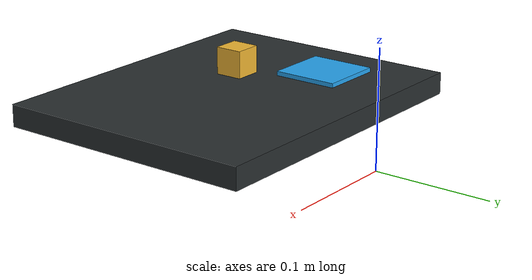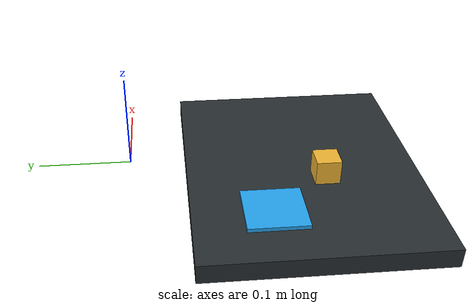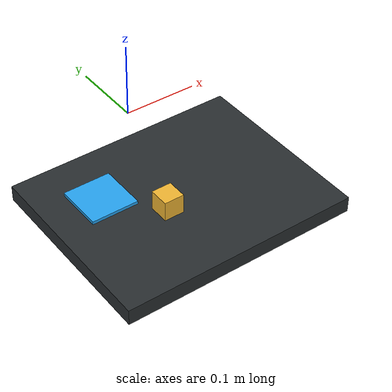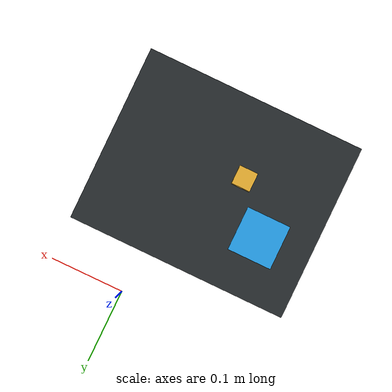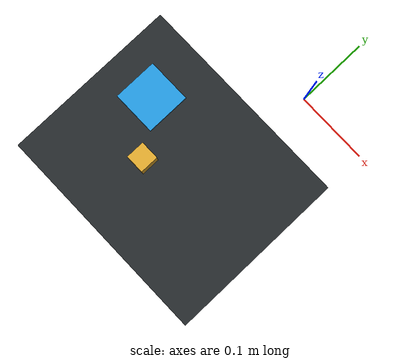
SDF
<sdf version="1.10">
  <world name="tabletop_practice">
    <physics name="1ms" type="ignored">
      <max_step_size>0.005</max_step_size>
      <real_time_factor>1</real_time_factor>
      <real_time_update_rate>500</real_time_update_rate>
    </physics>

    <plugin name="gz::sim::systems::Physics" filename="gz-sim-physics-system"/>
    <plugin name="gz::sim::systems::UserCommands" filename="gz-sim-user-commands-system"/>
    <plugin name="gz::sim::systems::SceneBroadcaster" filename="gz-sim-scene-broadcaster-system"/>
    <plugin name="gz::sim::systems::Contact" filename="gz-sim-contact-system"/>

    <gravity>0 0 -9.80665</gravity>
    <magnetic_field>0 0 0</magnetic_field>
    <atmosphere type="adiabatic"/>

    <scene>
      <ambient>0.35 0.38 0.42 1</ambient>
      <background>0.025 0.030 0.035 1</background>
      <shadows>true</shadows>
    </scene>

    <gui>
      <camera name="user_camera">
        <pose>0.45 -0.75 0.45 0 0.45 2.4</pose>
      </camera>
    </gui>

    <light name="work_light" type="directional">
      <pose>0 0 3 0 0 0</pose>
      <cast_shadows>true</cast_shadows>
      <intensity>1.2</intensity>
      <direction>-0.35 0.2 -0.9</direction>
      <diffuse>0.9 0.92 1.0 1</diffuse>
      <specular>0.2 0.2 0.25 1</specular>
    </light>

    <model name="tabletop_table">
      <static>true</static>
      <pose>-0.05 -0.18 0.01 0 0 0</pose>
      <link name="link">
        <collision name="collision">
          <geometry>
            <box>
              <size>0.30 0.24 0.02</size>
            </box>
          </geometry>
        </collision>
        <visual name="visual">
          <geometry>
            <box>
              <size>0.30 0.24 0.02</size>
            </box>
          </geometry>
          <material>
            <ambient>0.14 0.16 0.17 1</ambient>
            <diffuse>0.16 0.18 0.19 1</diffuse>
            <specular>0.2 0.2 0.2 1</specular>
          </material>
        </visual>
      </link>
    </model>

    <model name="pickup_cube">
      <static>true</static>
      <pose>-0.08 -0.20 0.035 0 0 0</pose>
      <link name="link">
        <collision name="collision">
          <geometry>
            <box>
              <size>0.025 0.025 0.025</size>
            </box>
          </geometry>
        </collision>
        <visual name="visual">
          <geometry>
            <box>
              <size>0.025 0.025 0.025</size>
            </box>
          </geometry>
          <material>
            <ambient>0.95 0.72 0.20 1</ambient>
            <diffuse>0.95 0.72 0.20 1</diffuse>
            <specular>0.45 0.4 0.2 1</specular>
          </material>
        </visual>
      </link>
    </model>

    <model name="place_zone">
      <static>true</static>
      <pose>-0.13 -0.14 0.023 0 0 0</pose>
      <link name="link">
        <visual name="visual">
          <geometry>
            <box>
              <size>0.06 0.06 0.004</size>
            </box>
          </geometry>
          <material>
            <ambient>0.15 0.65 0.95 1</ambient>
            <diffuse>0.15 0.65 0.95 1</diffuse>
            <specular>0.2 0.2 0.2 1</specular>
          </material>
        </visual>
      </link>
    </model>
  </world>
</sdf>
